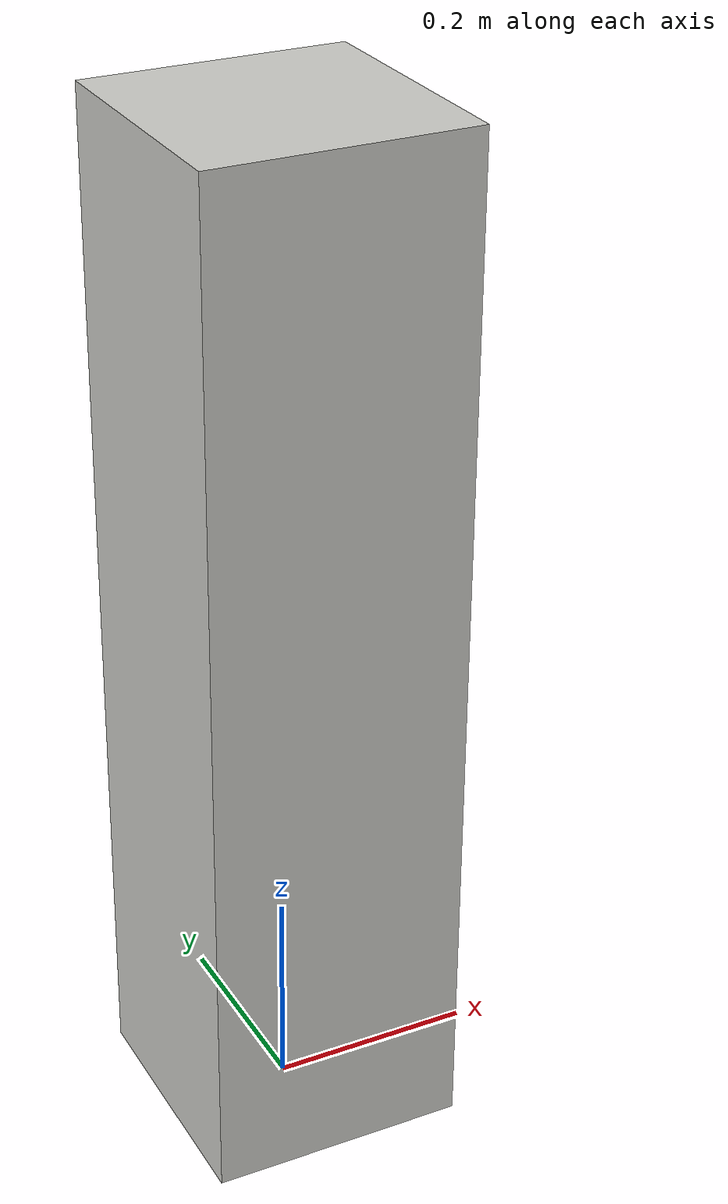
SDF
<?xml version='1.0'?>
<sdf version='1.6'>
  <model name='obstacle_squarepillar_small'>
    <static>1</static>
    <pose frame=''>0 0 0 0 -0 0</pose>
    <link name='Pillar'>
      <collision name='Pillar_Collision'>
        <geometry>
          <box>
            <size>0.25 0.25 1.0</size>
          </box>
        </geometry>
        <pose frame=''>0 0 0.5 0 -0 0</pose>
      </collision>
      <visual name='Pillar_Visual'>
        <pose frame=''>0 0 0.5 0 -0 0</pose>
        <geometry>
          <box>
            <size>0.25 0.25 1.0</size>
          </box>
        </geometry>
        <material>
          <script>
            <uri>file://media/materials/scripts/gazebo.material</uri>
            <name>Gazebo/CeilingTiled</name>
          </script>
          <ambient>1 0.764706 0.305882 1</ambient>
        </material>
      </visual>
      <pose frame=''>0 0 0 0 -0 0</pose>
    </link>
  </model>
</sdf>
